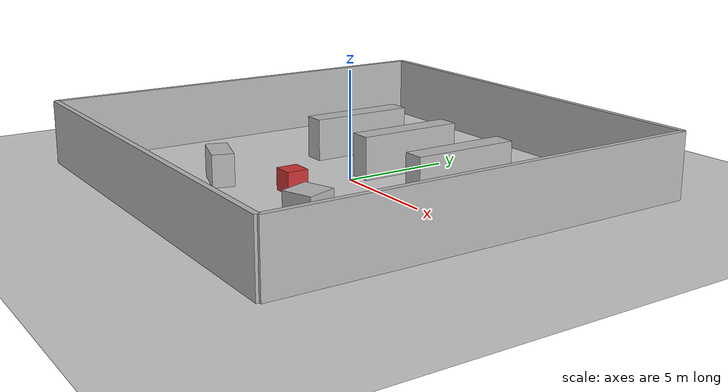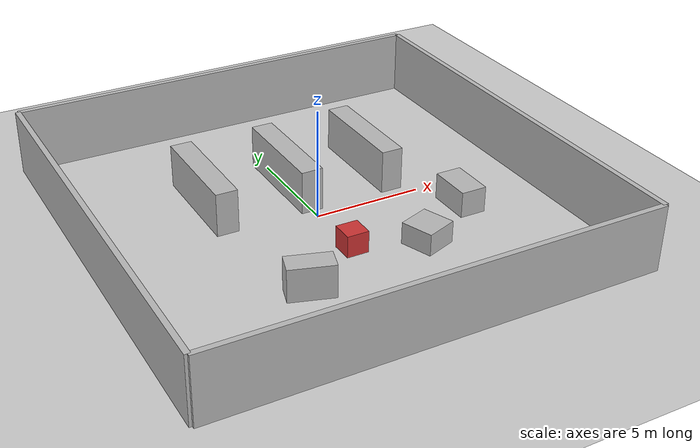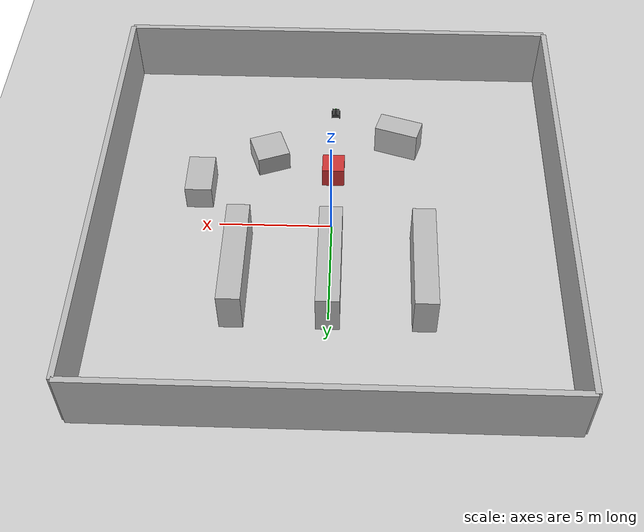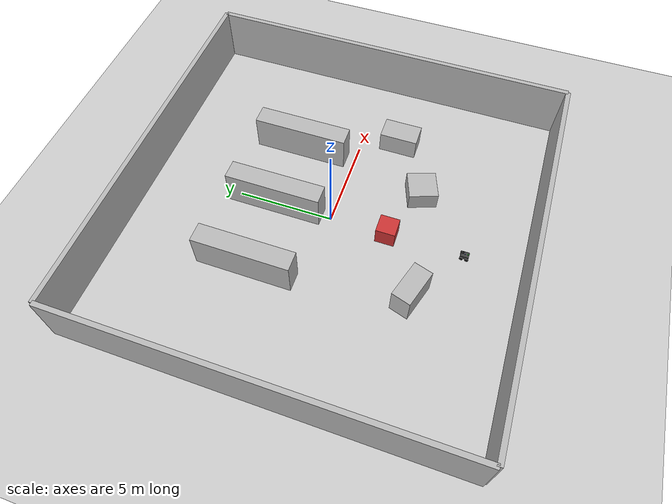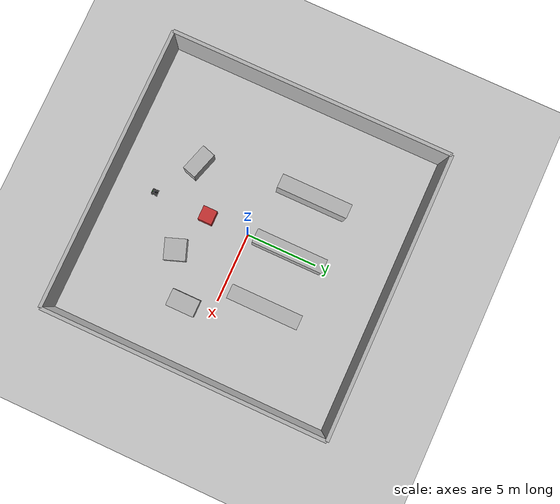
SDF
<sdf version="1.10">
 <world name="ares_world">
  <physics name="physics" type="ignored">
   <max_step_size>0.001</max_step_size>
   <real_time_factor>1.0</real_time_factor>
  </physics>
  <spherical_coordinates>
   <surface_model>EARTH_WGS84</surface_model>
   <world_frame_orientation>ENU</world_frame_orientation>
   <latitude_deg>39.7392</latitude_deg>
   <longitude_deg>-104.9903</longitude_deg>
   <elevation>1609.0</elevation>
   <heading_deg>0</heading_deg>
  </spherical_coordinates>
  <plugin filename="gz-sim-physics-system" name="gz::sim::systems::Physics"/>
  <plugin filename="gz-sim-user-commands-system" name="gz::sim::systems::UserCommands"/>
  <plugin filename="gz-sim-scene-broadcaster-system" name="gz::sim::systems::SceneBroadcaster"/>
  <plugin filename="gz-sim-sensors-system" name="gz::sim::systems::Sensors">
   <render_engine>ogre2</render_engine>
  </plugin>
  <plugin filename="gz-sim-imu-system" name="gz::sim::systems::Imu"/>
  <plugin filename="gz-sim-navsat-system" name="gz::sim::systems::NavSat"/>
  <light type="directional" name="sun">
   <pose>0 0 10 0 0 0</pose>
   <diffuse>0.8 0.8 0.8 1</diffuse>
   <specular>0.2 0.2 0.2 1</specular>
   <direction>-0.5 0.1 -0.9</direction>
  </light>
  <model name="ground_plane">
   <static>true</static>
   <link name="link">
    <collision name="collision">
     <geometry><plane><normal>0 0 1</normal><size>100 100</size></plane></geometry>
    </collision>
    <visual name="visual"><geometry><plane><normal>0 0 1</normal><size>100 100</size></plane></geometry></visual>
   </link>
  </model>
  <model name="north_wall">
   <static>true</static>
   <pose>0 10 1.5 0 0 0</pose>
   <link name="link">
    <collision name="collision"><geometry><box><size>20 0.25 3</size></box></geometry></collision>
    <visual name="visual"><geometry><box><size>20 0.25 3</size></box></geometry></visual>
   </link>
  </model>
  <model name="south_wall">
   <static>true</static>
   <pose>0 -10 1.5 0 0 0</pose>
   <link name="link">
    <collision name="collision"><geometry><box><size>20 0.25 3</size></box></geometry></collision>
    <visual name="visual"><geometry><box><size>20 0.25 3</size></box></geometry></visual>
   </link>
  </model>
  <model name="east_wall">
   <static>true</static>
   <pose>10 0 1.5 0 0 0</pose>
   <link name="link">
    <collision name="collision"><geometry><box><size>0.25 20 3</size></box></geometry></collision>
    <visual name="visual"><geometry><box><size>0.25 20 3</size></box></geometry></visual>
   </link>
  </model>
  <model name="west_wall">
   <static>true</static>
   <pose>-10 0 1.5 0 0 0</pose>
   <link name="link">
    <collision name="collision"><geometry><box><size>0.25 20 3</size></box></geometry></collision>
    <visual name="visual"><geometry><box><size>0.25 20 3</size></box></geometry></visual>
   </link>
  </model>
  <model name="shelf_1">
   <static>true</static>
   <pose>4 3 1 0 0 0</pose>
   <link name="link">
    <collision name="collision"><geometry><box><size>1 5 2</size></box></geometry></collision>
    <visual name="visual"><geometry><box><size>1 5 2</size></box></geometry></visual>
   </link>
  </model>
  <model name="shelf_2">
   <static>true</static>
   <pose>0 3 1 0 0 0</pose>
   <link name="link">
    <collision name="collision"><geometry><box><size>1 5 2</size></box></geometry></collision>
    <visual name="visual"><geometry><box><size>1 5 2</size></box></geometry></visual>
   </link>
  </model>
  <model name="shelf_3">
   <static>true</static>
   <pose>-4 3 1 0 0 0</pose>
   <link name="link">
    <collision name="collision"><geometry><box><size>1 5 2</size></box></geometry></collision>
    <visual name="visual"><geometry><box><size>1 5 2</size></box></geometry></visual>
   </link>
  </model>
  <model name="crate_1">
   <static>true</static>
   <pose>3 -4 0.5 0 0 0.35</pose>
   <link name="link">
    <collision name="collision"><geometry><box><size>1.5 1.5 1</size></box></geometry></collision>
    <visual name="visual"><geometry><box><size>1.5 1.5 1</size></box></geometry></visual>
   </link>
  </model>
  <model name="crate_2">
   <static>true</static>
   <pose>-3 -5 0.75 0 0 -0.3</pose>
   <link name="link">
    <collision name="collision"><geometry><box><size>2 1 1.5</size></box></geometry></collision>
    <visual name="visual"><geometry><box><size>2 1 1.5</size></box></geometry></visual>
   </link>
  </model>
  <model name="crate_3">
   <static>true</static>
   <pose>6 -2 0.6 0 0 0</pose>
   <link name="link">
    <collision name="collision"><geometry><box><size>1.2 2 1.2</size></box></geometry></collision>
    <visual name="visual"><geometry><box><size>1.2 2 1.2</size></box></geometry></visual>
   </link>
  </model>
  <include>
   <uri>file:///home/priestly/ares_ws/src/ares_simulation/models/ares_jackal</uri>
   <name>ares_jackal</name>
   <pose>0 -7 0.10 0 0 1.5708</pose>
  </include>
  <model name="r1_test_obstacle">
   <static>true</static>
   <pose>0 -3 0.5 0 0 0</pose>
   <link name="link">
    <collision name="collision"><geometry><box><size>1.0 1.0 1.0</size></box></geometry></collision>
    <visual name="visual">
     <geometry><box><size>1.0 1.0 1.0</size></box></geometry>
     <material><ambient>0.8 0.2 0.2 1</ambient><diffuse>0.8 0.2 0.2 1</diffuse></material>
    </visual>
   </link>
  </model>
 </world>
</sdf>

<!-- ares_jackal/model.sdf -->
<sdf version="1.10">

  <model name="ares_jackal">

    <pose>0 0 0 0 0 0</pose>

    <!-- CHASSIS                                               -->

    <link name="chassis_link">

      <pose>0 0 0.18 0 0 0</pose>

      <inertial>
        <mass>16.523</mass>

        <inertia>
          <ixx>0.3136</ixx>
          <iyy>0.3922</iyy>
          <izz>0.4485</izz>
          <ixy>0</ixy>
          <ixz>0</ixz>
          <iyz>0</iyz>
        </inertia>
      </inertial>

      <collision name="chassis_collision">

        <geometry>
          <box>
            <size>0.420 0.310 0.184</size>
          </box>
        </geometry>

      </collision>

      <visual name="chassis_visual">

        <geometry>
          <box>
            <size>0.420 0.310 0.184</size>
          </box>
        </geometry>

        <material>
          <ambient>0.25 0.25 0.25 1</ambient>
          <diffuse>0.25 0.25 0.25 1</diffuse>
        </material>

      </visual>

    </link>

    <!-- IMU                                                   -->

    <link name="imu_link">

      <!-- 10 cm above chassis frame -->
      <pose relative_to="chassis_link">
        0 0 0.10 0 0 0
      </pose>

      <inertial>
        <mass>0.05</mass>

        <inertia>
          <ixx>0.0001</ixx>
          <iyy>0.0001</iyy>
          <izz>0.0001</izz>
          <ixy>0</ixy>
          <ixz>0</ixz>
          <iyz>0</iyz>
        </inertia>
      </inertial>

      <visual name="imu_visual">

        <geometry>
          <box>
            <size>0.04 0.03 0.02</size>
          </box>
        </geometry>

        <material>
          <ambient>0.10 0.20 0.80 1</ambient>
          <diffuse>0.10 0.20 0.80 1</diffuse>
        </material>

      </visual>

      <sensor name="ares_imu" type="imu">

        <always_on>true</always_on>
        <update_rate>100</update_rate>

        <topic>/ares/imu</topic>

        <!-- Clean frame ID -->
        <frame_id>imu_link</frame_id>

        <imu>

          <angular_velocity>

            <x>
              <noise type="gaussian">
                <mean>0</mean>
                <stddev>0.0002</stddev>
              </noise>
            </x>

            <y>
              <noise type="gaussian">
                <mean>0</mean>
                <stddev>0.0002</stddev>
              </noise>
            </y>

            <z>
              <noise type="gaussian">
                <mean>0</mean>
                <stddev>0.0002</stddev>
              </noise>
            </z>

          </angular_velocity>

          <linear_acceleration>

            <x>
              <noise type="gaussian">
                <mean>0</mean>
                <stddev>0.01</stddev>
              </noise>
            </x>

            <y>
              <noise type="gaussian">
                <mean>0</mean>
                <stddev>0.01</stddev>
              </noise>
            </y>

            <z>
              <noise type="gaussian">
                <mean>0</mean>
                <stddev>0.01</stddev>
              </noise>
            </z>

          </linear_acceleration>

        </imu>

      </sensor>

    </link>

    <joint name="imu_joint" type="fixed">

      <parent>chassis_link</parent>
      <child>imu_link</child>

    </joint>

    <!-- 360 DEGREE LIDAR                                      -->

    <link name="lidar_link">

      <!-- front/top of chassis -->
      <pose relative_to="chassis_link">
        0.10 0 0.22 0 0 0
      </pose>

      <inertial>
        <mass>0.5</mass>

        <inertia>
          <ixx>0.001</ixx>
          <iyy>0.001</iyy>
          <izz>0.001</izz>
          <ixy>0</ixy>
          <ixz>0</ixz>
          <iyz>0</iyz>
        </inertia>
      </inertial>

      <visual name="lidar_visual">

        <geometry>
          <cylinder>
            <radius>0.045</radius>
            <length>0.06</length>
          </cylinder>
        </geometry>

        <material>
          <ambient>0.15 0.15 0.15 1</ambient>
          <diffuse>0.15 0.15 0.15 1</diffuse>
        </material>

      </visual>

      <sensor name="ares_lidar" type="gpu_lidar">

        <always_on>true</always_on>
        <update_rate>5</update_rate>

        <topic>/ares/scan</topic>

        <!-- Clean frame ID -->
        <frame_id>lidar_link</frame_id>

        <lidar>

          <scan>

            <horizontal>

              <!-- 360 points = approximately 1 degree each -->
              <samples>360</samples>

              <resolution>1</resolution>

              <min_angle>-3.14159265359</min_angle>
              <max_angle>3.14159265359</max_angle>

            </horizontal>

          </scan>

          <range>

            <min>0.12</min>
            <max>20.0</max>
            <resolution>0.01</resolution>

          </range>

          <noise>
            <type>gaussian</type>
            <mean>0.0</mean>
            <stddev>0.01</stddev>
          </noise>

        </lidar>

      </sensor>

    </link>

    <joint name="lidar_joint" type="fixed">

      <parent>chassis_link</parent>
      <child>lidar_link</child>

    </joint>

    <!-- RGB-D CAMERA                                          -->

    <link name="camera_link">

      <!-- front/top of chassis -->
      <pose relative_to="chassis_link">
        0.20 0 0.12 0 0 0
      </pose>

      <inertial>
        <mass>0.15</mass>

        <inertia>
          <ixx>0.0002</ixx>
          <iyy>0.0002</iyy>
          <izz>0.0002</izz>
          <ixy>0</ixy>
          <ixz>0</ixz>
          <iyz>0</iyz>
        </inertia>
      </inertial>

      <visual name="camera_visual">

        <geometry>
          <box>
            <size>0.06 0.10 0.04</size>
          </box>
        </geometry>

        <material>
          <ambient>0.10 0.10 0.10 1</ambient>
          <diffuse>0.10 0.10 0.10 1</diffuse>
        </material>

      </visual>

      <sensor name="ares_depth_camera"
              type="depth_camera">

        <always_on>false</always_on>
        <update_rate>5</update_rate>

        <topic>/ares/camera</topic>

        <!-- Clean frame ID -->
        <frame_id>camera_link</frame_id>

        <camera>

          <horizontal_fov>1.047</horizontal_fov>

          <image>
            <width>320</width>
            <height>240</height>
            <format>R8G8B8</format>
          </image>

          <clip>
            <near>0.10</near>
            <far>10.0</far>
          </clip>

          <depth_camera>

            <clip>
              <near>0.10</near>
              <far>10.0</far>
            </clip>

          </depth_camera>

        </camera>

      </sensor>

    </link>

    <joint name="camera_joint" type="fixed">

      <parent>chassis_link</parent>
      <child>camera_link</child>

    </joint>

    <!-- GNSS                                                  -->

    <link name="gps_link">

      <!-- rear/top -->
      <pose relative_to="chassis_link">
        -0.15 0 0.14 0 0 0
      </pose>

      <inertial>

        <mass>0.10</mass>

        <inertia>
          <ixx>0.0001</ixx>
          <iyy>0.0001</iyy>
          <izz>0.0001</izz>
          <ixy>0</ixy>
          <ixz>0</ixz>
          <iyz>0</iyz>
        </inertia>

      </inertial>

      <visual name="gps_visual">

        <geometry>
          <box>
            <size>0.06 0.06 0.025</size>
          </box>
        </geometry>

        <material>
          <ambient>0.10 0.80 0.10 1</ambient>
          <diffuse>0.10 0.80 0.10 1</diffuse>
        </material>

      </visual>

      <sensor name="ares_gnss" type="navsat">
        <always_on>true</always_on>
        <update_rate>10</update_rate>
        <topic>/ares/gps</topic>
        <frame_id>gps_link</frame_id>

        <navsat>
          <position_sensing>
            <horizontal>
              <noise type="gaussian">
                <mean>0</mean>
                <stddev>0.0000045</stddev>
              </noise>
            </horizontal>

            <vertical>
              <noise type="gaussian">
                <mean>0</mean>
                <stddev>1.0</stddev>
              </noise>
            </vertical>
          </position_sensing>

          <velocity_sensing>
            <horizontal>
              <noise type="gaussian">
                <mean>0</mean>
                <stddev>0.05</stddev>
              </noise>
            </horizontal>

            <vertical>
              <noise type="gaussian">
                <mean>0</mean>
                <stddev>0.10</stddev>
              </noise>
            </vertical>
          </velocity_sensing>
        </navsat>
      </sensor>

    </link>

    <joint name="gps_joint" type="fixed">

      <parent>chassis_link</parent>
      <child>gps_link</child>

    </joint>

    <!-- FRONT LEFT WHEEL                                      -->

    <link name="front_left_wheel_link">

      <pose>
        0.131 0.187795 0.098 0 0 0
      </pose>

      <inertial>

        <mass>0.477</mass>

        <inertia>
          <ixx>0.0013</ixx>
          <iyy>0.0024</iyy>
          <izz>0.0013</izz>
          <ixy>0</ixy>
          <ixz>0</ixz>
          <iyz>0</iyz>
        </inertia>

      </inertial>

      <collision name="collision">

        <!-- Only geometry is rotated.
             The wheel link itself remains unrotated. -->

        <pose>
          0 0 0 1.57079632679 0 0
        </pose>

        <geometry>

          <cylinder>
            <radius>0.098</radius>
            <length>0.040</length>
          </cylinder>

        </geometry>

      </collision>

      <visual name="visual">

        <pose>
          0 0 0 1.57079632679 0 0
        </pose>

        <geometry>

          <cylinder>
            <radius>0.098</radius>
            <length>0.040</length>
          </cylinder>

        </geometry>

        <material>
          <ambient>0.05 0.05 0.05 1</ambient>
          <diffuse>0.05 0.05 0.05 1</diffuse>
        </material>

      </visual>

    </link>

    <!-- FRONT RIGHT WHEEL                                     -->

    <link name="front_right_wheel_link">

      <pose>
        0.131 -0.187795 0.098 0 0 0
      </pose>

      <inertial>

        <mass>0.477</mass>

        <inertia>
          <ixx>0.0013</ixx>
          <iyy>0.0024</iyy>
          <izz>0.0013</izz>
          <ixy>0</ixy>
          <ixz>0</ixz>
          <iyz>0</iyz>
        </inertia>

      </inertial>

      <collision name="collision">

        <pose>
          0 0 0 1.57079632679 0 0
        </pose>

        <geometry>

          <cylinder>
            <radius>0.098</radius>
            <length>0.040</length>
          </cylinder>

        </geometry>

      </collision>

      <visual name="visual">

        <pose>
          0 0 0 1.57079632679 0 0
        </pose>

        <geometry>

          <cylinder>
            <radius>0.098</radius>
            <length>0.040</length>
          </cylinder>

        </geometry>

        <material>
          <ambient>0.05 0.05 0.05 1</ambient>
          <diffuse>0.05 0.05 0.05 1</diffuse>
        </material>

      </visual>

    </link>

    <!-- REAR LEFT WHEEL                                       -->

    <link name="rear_left_wheel_link">

      <pose>
        -0.131 0.187795 0.098 0 0 0
      </pose>

      <inertial>

        <mass>0.477</mass>

        <inertia>
          <ixx>0.0013</ixx>
          <iyy>0.0024</iyy>
          <izz>0.0013</izz>
          <ixy>0</ixy>
          <ixz>0</ixz>
          <iyz>0</iyz>
        </inertia>

      </inertial>

      <collision name="collision">

        <pose>
          0 0 0 1.57079632679 0 0
        </pose>

        <geometry>

          <cylinder>
            <radius>0.098</radius>
            <length>0.040</length>
          </cylinder>

        </geometry>

      </collision>

      <visual name="visual">

        <pose>
          0 0 0 1.57079632679 0 0
        </pose>

        <geometry>

          <cylinder>
            <radius>0.098</radius>
            <length>0.040</length>
          </cylinder>

        </geometry>

        <material>
          <ambient>0.05 0.05 0.05 1</ambient>
          <diffuse>0.05 0.05 0.05 1</diffuse>
        </material>

      </visual>

    </link>

    <!-- REAR RIGHT WHEEL                                      -->

    <link name="rear_right_wheel_link">

      <pose>
        -0.131 -0.187795 0.098 0 0 0
      </pose>

      <inertial>

        <mass>0.477</mass>

        <inertia>
          <ixx>0.0013</ixx>
          <iyy>0.0024</iyy>
          <izz>0.0013</izz>
          <ixy>0</ixy>
          <ixz>0</ixz>
          <iyz>0</iyz>
        </inertia>

      </inertial>

      <collision name="collision">

        <pose>
          0 0 0 1.57079632679 0 0
        </pose>

        <geometry>

          <cylinder>
            <radius>0.098</radius>
            <length>0.040</length>
          </cylinder>

        </geometry>

      </collision>

      <visual name="visual">

        <pose>
          0 0 0 1.57079632679 0 0
        </pose>

        <geometry>

          <cylinder>
            <radius>0.098</radius>
            <length>0.040</length>
          </cylinder>

        </geometry>

        <material>
          <ambient>0.05 0.05 0.05 1</ambient>
          <diffuse>0.05 0.05 0.05 1</diffuse>
        </material>

      </visual>

    </link>

    <!-- WHEEL JOINTS                                          -->

    <joint name="front_left_wheel_joint"
           type="revolute">

      <parent>chassis_link</parent>
      <child>front_left_wheel_link</child>

      <axis>

        <xyz>0 1 0</xyz>

        <dynamics>
          <damping>0.05</damping>
        </dynamics>

      </axis>

    </joint>

    <joint name="front_right_wheel_joint"
           type="revolute">

      <parent>chassis_link</parent>
      <child>front_right_wheel_link</child>

      <axis>

        <xyz>0 1 0</xyz>

        <dynamics>
          <damping>0.05</damping>
        </dynamics>

      </axis>

    </joint>

    <joint name="rear_left_wheel_joint"
           type="revolute">

      <parent>chassis_link</parent>
      <child>rear_left_wheel_link</child>

      <axis>

        <xyz>0 1 0</xyz>

        <dynamics>
          <damping>0.05</damping>
        </dynamics>

      </axis>

    </joint>

    <joint name="rear_right_wheel_joint"
           type="revolute">

      <parent>chassis_link</parent>
      <child>rear_right_wheel_link</child>

      <axis>

        <xyz>0 1 0</xyz>

        <dynamics>
          <damping>0.05</damping>
        </dynamics>

      </axis>

    </joint>

    <!-- DIFFERENTIAL DRIVE                                    -->

    <plugin
      filename="gz-sim-diff-drive-system"
      name="gz::sim::systems::DiffDrive">

      <!-- LEFT SIDE -->

      <left_joint>
        front_left_wheel_joint
      </left_joint>

      <left_joint>
        rear_left_wheel_joint
      </left_joint>

      <!-- RIGHT SIDE -->

      <right_joint>
        front_right_wheel_joint
      </right_joint>

      <right_joint>
        rear_right_wheel_joint
      </right_joint>

      <!-- JACKAL GEOMETRY -->

      <wheel_separation>
        0.37559
      </wheel_separation>

      <wheel_radius>
        0.098
      </wheel_radius>

      <!-- COMMAND -->

      <topic>
        /ares/cmd_vel
      </topic>

      <!-- ODOMETRY -->

      <odom_topic>
        /ares/odom
      </odom_topic>

      <!-- Gazebo transform stream -->
      <tf_topic>
        /ares/tf
      </tf_topic>

      <!-- Clean TF / odometry frame names -->
      <frame_id>
        odom
      </frame_id>

      <child_frame_id>
        base_footprint
      </child_frame_id>

      <odom_publish_frequency>
        50
      </odom_publish_frequency>

    </plugin>

  </model>

</sdf>
